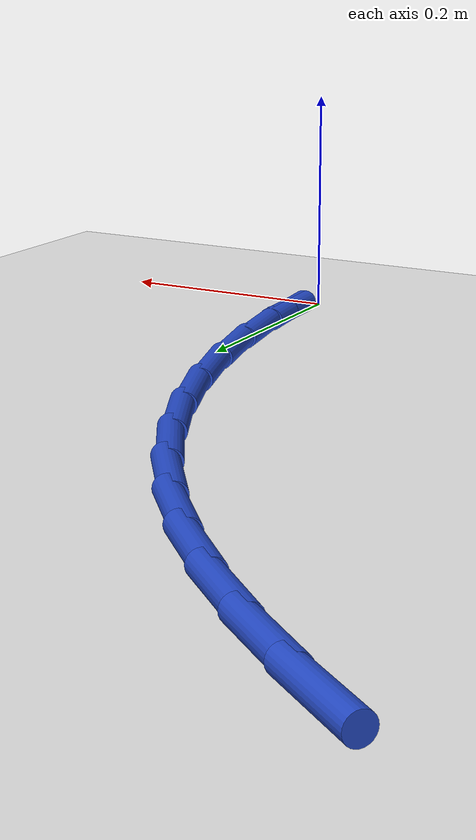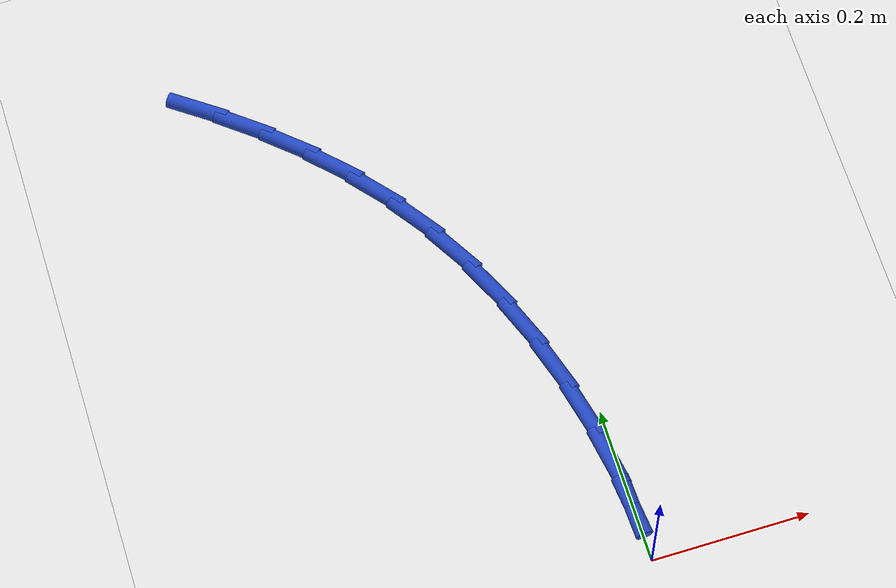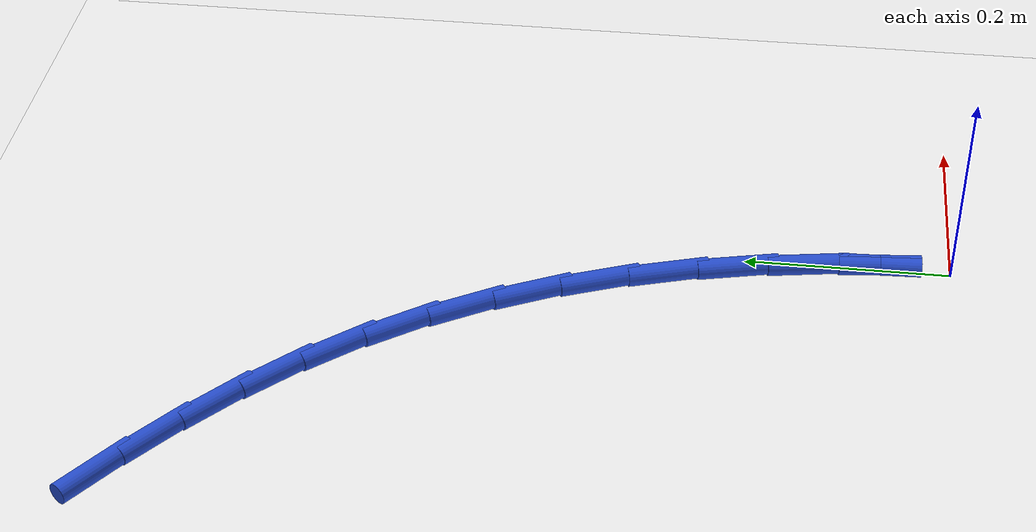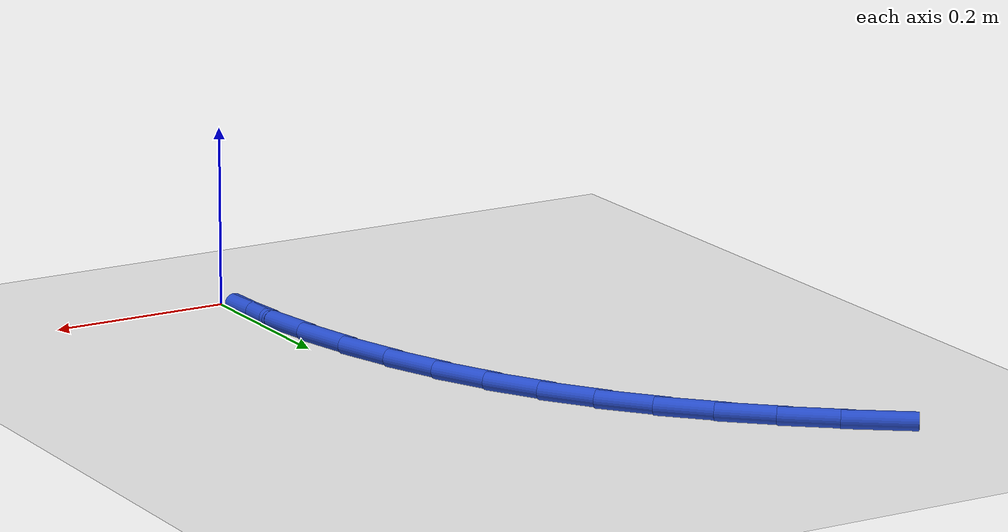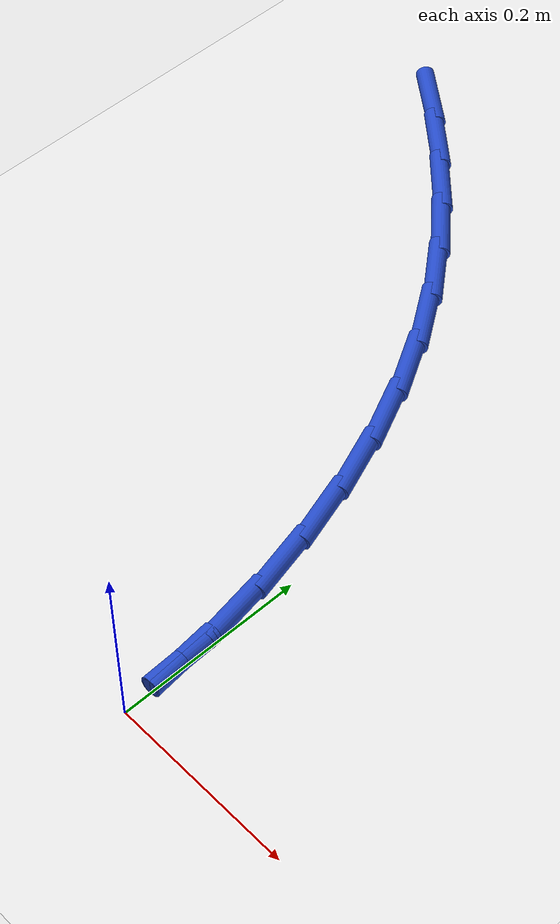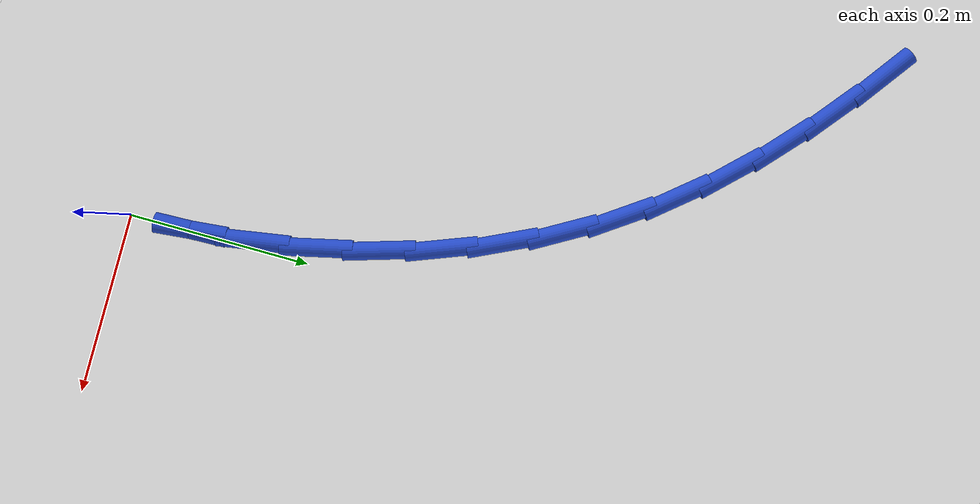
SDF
<sdf version="1.6">
 <world name="default">
  <model name="ground_plane">
   <static>1</static>
   <link name="link">
    <collision name="collision">
     <geometry><plane><normal>0 0 1</normal><size>100 100</size></plane></geometry>
     <surface><friction><ode><mu>100</mu><mu2>50</mu2></ode></friction></surface>
    </collision>
    <visual name="visual">
     <cast_shadows>0</cast_shadows>
     <geometry><plane><normal>0 0 1</normal><size>100 100</size></plane></geometry>
     <material>
      <script><uri>file://media/materials/scripts/gazebo.material</uri><name>Gazebo/WhiteGlow</name></script>
     </material>
    </visual>
   </link>
  </model>
  <model name="line">
   <link name="link_1">
    <pose>-0.0024474599340887117 0.06941016818108159 0.01 0 1.57 -1.4717801429492428</pose>
    <collision name="collision">
     <geometry><cylinder><radius>0.01</radius><length>0.08</length></cylinder></geometry>
    </collision>
    <visual name="visual">
     <material>
      <script><name>Gazebo/Blue</name><uri>file://media/materials/scripts/gazebo.material</uri></script>
     </material>
     <geometry><cylinder><radius>0.01</radius><length>0.08</length></cylinder></geometry>
    </visual>
   </link>
   <link name="link_2">
    <pose>-0.009289357796138896 0.13828298452171722 0.01 0 1.57 -1.4069960300641011</pose>
    <collision name="collision">
     <geometry><cylinder><radius>0.01</radius><length>0.08</length></cylinder></geometry>
    </collision>
    <visual name="visual">
     <material>
      <script><name>Gazebo/Blue</name><uri>file://media/materials/scripts/gazebo.material</uri></script>
     </material>
     <geometry><cylinder><radius>0.01</radius><length>0.08</length></cylinder></geometry>
    </visual>
   </link>
   <link name="link_3">
    <pose>-0.020510490021164087 0.20617416753048493 0.01 0 1.57 -1.3404716910607022</pose>
    <collision name="collision">
     <geometry><cylinder><radius>0.01</radius><length>0.08</length></cylinder></geometry>
    </collision>
    <visual name="visual">
     <material>
      <script><name>Gazebo/Blue</name><uri>file://media/materials/scripts/gazebo.material</uri></script>
     </material>
     <geometry><cylinder><radius>0.01</radius><length>0.08</length></cylinder></geometry>
    </visual>
   </link>
   <link name="link_4">
    <pose>-0.036095653044177826 0.27263943571596294 0.01 0 1.57 -1.2714691092384414</pose>
    <collision name="collision">
     <geometry><cylinder><radius>0.01</radius><length>0.08</length></cylinder></geometry>
    </collision>
    <visual name="visual">
     <material>
      <script><name>Gazebo/Blue</name><uri>file://media/materials/scripts/gazebo.material</uri></script>
     </material>
     <geometry><cylinder><radius>0.01</radius><length>0.08</length></cylinder></geometry>
    </visual>
   </link>
   <link name="link_5">
    <pose>-0.05602964330019366 0.3372345075867293 0.01 0 1.57 -1.1992443545785418</pose>
    <collision name="collision">
     <geometry><cylinder><radius>0.01</radius><length>0.08</length></cylinder></geometry>
    </collision>
    <visual name="visual">
     <material>
      <script><name>Gazebo/Blue</name><uri>file://media/materials/scripts/gazebo.material</uri></script>
     </material>
     <geometry><cylinder><radius>0.01</radius><length>0.08</length></cylinder></geometry>
    </visual>
   </link>
   <link name="link_6">
    <pose>-0.08029725722422507 0.39951510165136217 0.01 0 1.57 -1.123063999456765</pose>
    <collision name="collision">
     <geometry><cylinder><radius>0.01</radius><length>0.08</length></cylinder></geometry>
    </collision>
    <visual name="visual">
     <material>
      <script><name>Gazebo/Blue</name><uri>file://media/materials/scripts/gazebo.material</uri></script>
     </material>
     <geometry><cylinder><radius>0.01</radius><length>0.08</length></cylinder></geometry>
    </visual>
   </link>
   <link name="link_7">
    <pose>-0.10888329125128558 0.4590369364184396 0.01 0 1.57 -1.0422368623501572</pose>
    <collision name="collision">
     <geometry><cylinder><radius>0.01</radius><length>0.08</length></cylinder></geometry>
    </collision>
    <visual name="visual">
     <material>
      <script><name>Gazebo/Blue</name><uri>file://media/materials/scripts/gazebo.material</uri></script>
     </material>
     <geometry><cylinder><radius>0.01</radius><length>0.08</length></cylinder></geometry>
    </visual>
   </link>
   <link name="link_8">
    <pose>-0.1417725418163888 0.5153557303965398 0.01 0 1.57 -0.9564862684514993</pose>
    <collision name="collision">
     <geometry><cylinder><radius>0.01</radius><length>0.08</length></cylinder></geometry>
    </collision>
    <visual name="visual">
     <material>
      <script><name>Gazebo/Blue</name><uri>file://media/materials/scripts/gazebo.material</uri></script>
     </material>
     <geometry><cylinder><radius>0.01</radius><length>0.08</length></cylinder></geometry>
    </visual>
   </link>
   <link name="link_9">
    <pose>-0.17893980240207583 0.5680488086348563 0.01 0 1.57 -0.8722371485792954</pose>
    <collision name="collision">
     <geometry><cylinder><radius>0.01</radius><length>0.08</length></cylinder></geometry>
    </collision>
    <visual name="visual">
     <material>
      <script><name>Gazebo/Blue</name><uri>file://media/materials/scripts/gazebo.material</uri></script>
     </material>
     <geometry><cylinder><radius>0.01</radius><length>0.08</length></cylinder></geometry>
    </visual>
   </link>
   <link name="link_10">
    <pose>-0.22015842097967253 0.6171286217749427 0.01 0 1.57 -0.7967017166007048</pose>
    <collision name="collision">
     <geometry><cylinder><radius>0.01</radius><length>0.08</length></cylinder></geometry>
    </collision>
    <visual name="visual">
     <material>
      <script><name>Gazebo/Blue</name><uri>file://media/materials/scripts/gazebo.material</uri></script>
     </material>
     <geometry><cylinder><radius>0.01</radius><length>0.08</length></cylinder></geometry>
    </visual>
   </link>
   <link name="link_11">
    <pose>-0.2650150244013624 0.6630109411234932 0.01 0 1.57 -0.7310780183562027</pose>
    <collision name="collision">
     <geometry><cylinder><radius>0.01</radius><length>0.08</length></cylinder></geometry>
    </collision>
    <visual name="visual">
     <material>
      <script><name>Gazebo/Blue</name><uri>file://media/materials/scripts/gazebo.material</uri></script>
     </material>
     <geometry><cylinder><radius>0.01</radius><length>0.08</length></cylinder></geometry>
    </visual>
   </link>
   <link name="link_12">
    <pose>-0.3130891867648387 0.7061267720520203 0.01 0 1.57 -0.6757387379904988</pose>
    <collision name="collision">
     <geometry><cylinder><radius>0.01</radius><length>0.08</length></cylinder></geometry>
    </collision>
    <visual name="visual">
     <material>
      <script><name>Gazebo/Blue</name><uri>file://media/materials/scripts/gazebo.material</uri></script>
     </material>
     <geometry><cylinder><radius>0.01</radius><length>0.08</length></cylinder></geometry>
    </visual>
   </link>
   <link name="link_13">
    <pose>-0.36396048216779475 0.746907119932037 0.01 0 1.57 -0.6306369083019696</pose>
    <collision name="collision">
     <geometry><cylinder><radius>0.01</radius><length>0.08</length></cylinder></geometry>
    </collision>
    <visual name="visual">
     <material>
      <script><name>Gazebo/Blue</name><uri>file://media/materials/scripts/gazebo.material</uri></script>
     </material>
     <geometry><cylinder><radius>0.01</radius><length>0.08</length></cylinder></geometry>
    </visual>
   </link>
   <link name="link_111">
    <pose>-0.002445694298533946 0.06939918112803656 0.01 0 1.57 -1.5355699371514582</pose>
    <collision name="collision">
     <geometry><cylinder><radius>0.01</radius><length>0.08</length></cylinder></geometry>
    </collision>
    <visual name="visual">
     <material>
      <script><name>Gazebo/Blue</name><uri>file://media/materials/scripts/gazebo.material</uri></script>
     </material>
     <geometry><cylinder><radius>0.01</radius><length>0.08</length></cylinder></geometry>
    </visual>
   </link>
  </model>
 </world>
</sdf>
